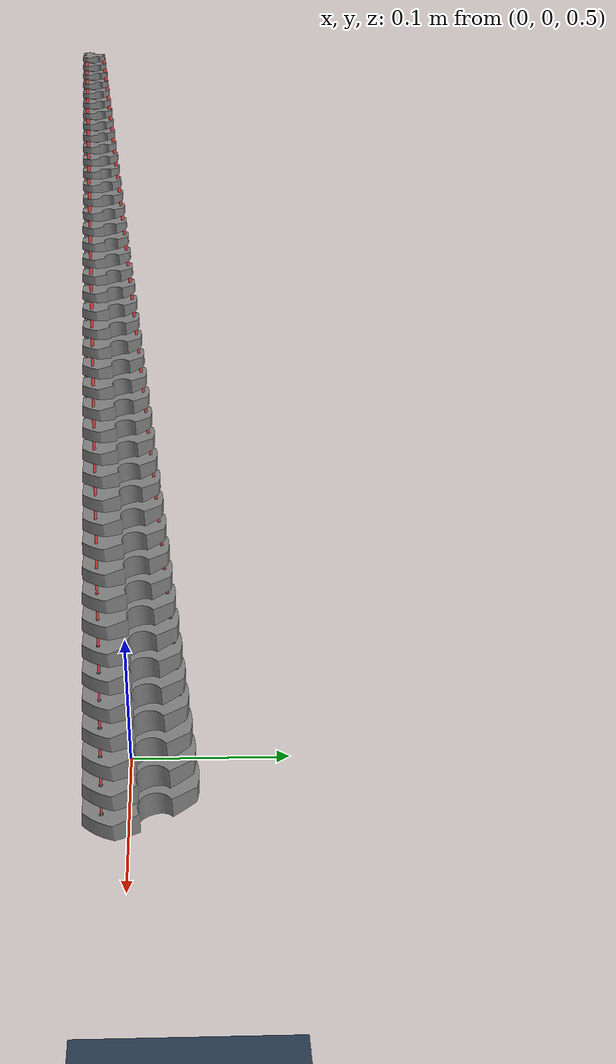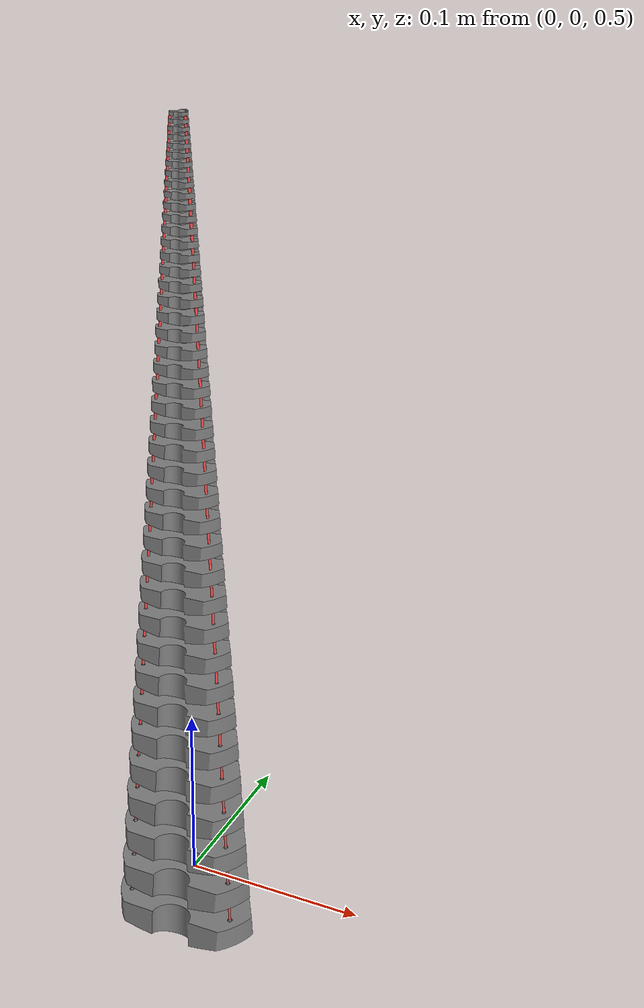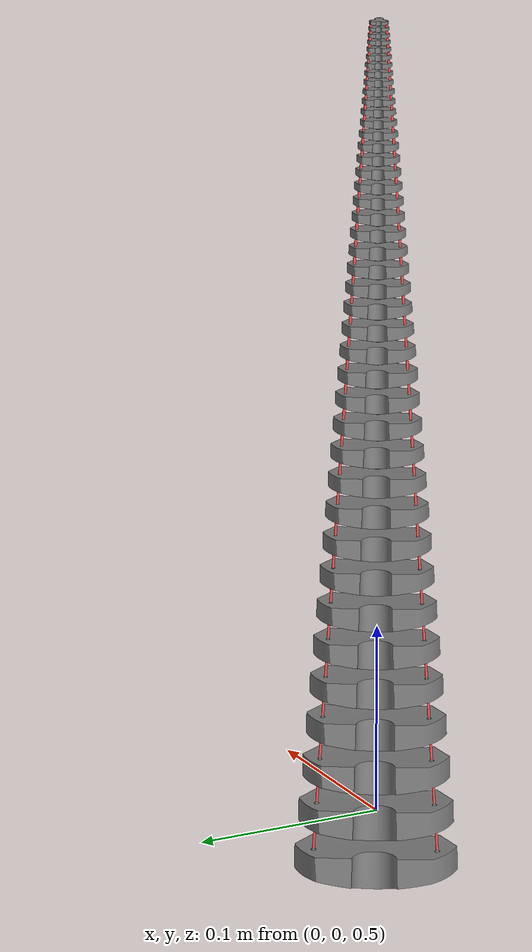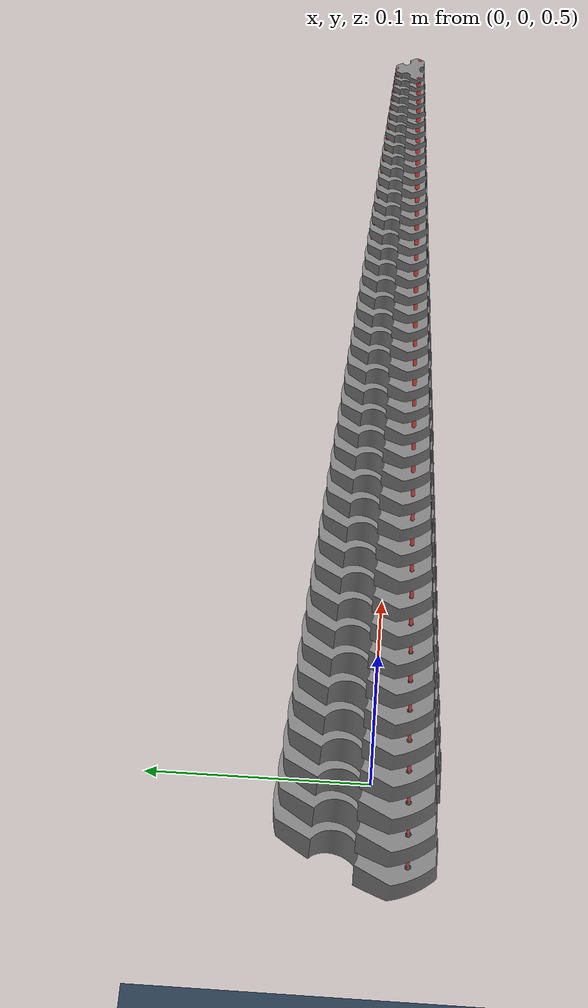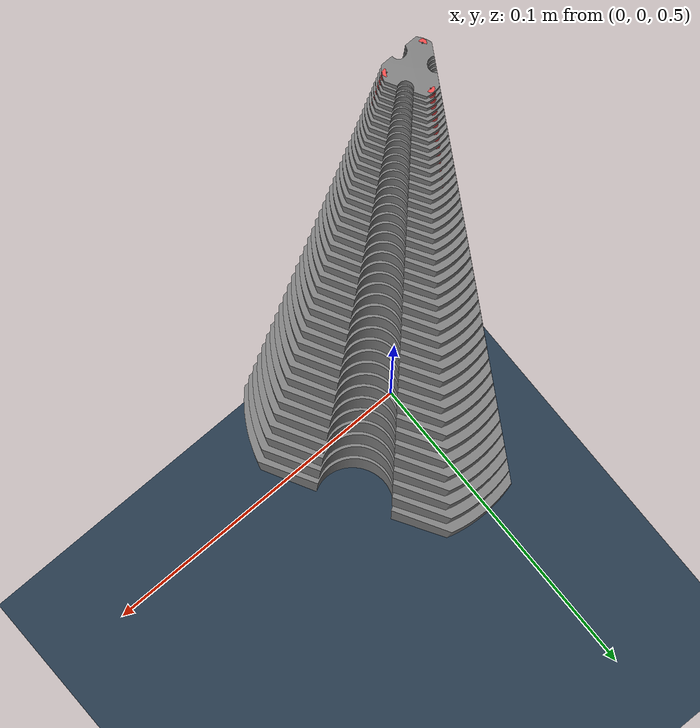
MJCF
<mujoco model="spiral_robot">
  <compiler angle="radian"/>
  <option gravity="0 0 0"/>
  <asset>
    <mesh name="baselink_1" file="baselink.stl" scale="0.001000000 0.001000000 0.001000000"/>
    <mesh name="baselink_2" file="baselink.stl" scale="0.000949007 0.000949007 0.000949007"/>
    <mesh name="baselink_3" file="baselink.stl" scale="0.000900615 0.000900615 0.000900615"/>
    <mesh name="baselink_4" file="baselink.stl" scale="0.000854690 0.000854690 0.000854690"/>
    <mesh name="baselink_5" file="baselink.stl" scale="0.000811107 0.000811107 0.000811107"/>
    <mesh name="baselink_6" file="baselink.stl" scale="0.000769746 0.000769746 0.000769746"/>
    <mesh name="baselink_7" file="baselink.stl" scale="0.000730494 0.000730494 0.000730494"/>
    <mesh name="baselink_8" file="baselink.stl" scale="0.000693244 0.000693244 0.000693244"/>
    <mesh name="baselink_9" file="baselink.stl" scale="0.000657894 0.000657894 0.000657894"/>
    <mesh name="baselink_10" file="baselink.stl" scale="0.000624346 0.000624346 0.000624346"/>
    <mesh name="baselink_11" file="baselink.stl" scale="0.000592509 0.000592509 0.000592509"/>
    <mesh name="baselink_12" file="baselink.stl" scale="0.000562295 0.000562295 0.000562295"/>
    <mesh name="baselink_13" file="baselink.stl" scale="0.000533622 0.000533622 0.000533622"/>
    <mesh name="baselink_14" file="baselink.stl" scale="0.000506411 0.000506411 0.000506411"/>
    <mesh name="baselink_15" file="baselink.stl" scale="0.000480588 0.000480588 0.000480588"/>
    <mesh name="baselink_16" file="baselink.stl" scale="0.000456081 0.000456081 0.000456081"/>
    <mesh name="baselink_17" file="baselink.stl" scale="0.000432825 0.000432825 0.000432825"/>
    <mesh name="baselink_18" file="baselink.stl" scale="0.000410754 0.000410754 0.000410754"/>
    <mesh name="baselink_19" file="baselink.stl" scale="0.000389808 0.000389808 0.000389808"/>
    <mesh name="baselink_20" file="baselink.stl" scale="0.000369931 0.000369931 0.000369931"/>
    <mesh name="baselink_21" file="baselink.stl" scale="0.000351067 0.000351067 0.000351067"/>
    <mesh name="baselink_22" file="baselink.stl" scale="0.000333165 0.000333165 0.000333165"/>
    <mesh name="baselink_23" file="baselink.stl" scale="0.000316176 0.000316176 0.000316176"/>
    <mesh name="baselink_24" file="baselink.stl" scale="0.000300053 0.000300053 0.000300053"/>
    <mesh name="baselink_25" file="baselink.stl" scale="0.000284753 0.000284753 0.000284753"/>
    <mesh name="baselink_26" file="baselink.stl" scale="0.000270232 0.000270232 0.000270232"/>
    <mesh name="baselink_27" file="baselink.stl" scale="0.000256452 0.000256452 0.000256452"/>
    <mesh name="baselink_28" file="baselink.stl" scale="0.000243375 0.000243375 0.000243375"/>
    <mesh name="baselink_29" file="baselink.stl" scale="0.000230965 0.000230965 0.000230965"/>
    <mesh name="baselink_30" file="baselink.stl" scale="0.000219187 0.000219187 0.000219187"/>
    <mesh name="baselink_31" file="baselink.stl" scale="0.000208010 0.000208010 0.000208010"/>
    <mesh name="baselink_32" file="baselink.stl" scale="0.000197403 0.000197403 0.000197403"/>
    <mesh name="baselink_33" file="baselink.stl" scale="0.000187337 0.000187337 0.000187337"/>
    <mesh name="baselink_34" file="baselink.stl" scale="0.000177784 0.000177784 0.000177784"/>
    <mesh name="baselink_35" file="baselink.stl" scale="0.000168718 0.000168718 0.000168718"/>
    <mesh name="baselink_36" file="baselink.stl" scale="0.000160115 0.000160115 0.000160115"/>
    <mesh name="baselink_37" file="baselink.stl" scale="0.000151950 0.000151950 0.000151950"/>
    <mesh name="baselink_38" file="baselink.stl" scale="0.000144202 0.000144202 0.000144202"/>
    <mesh name="baselink_39" file="baselink.stl" scale="0.000136849 0.000136849 0.000136849"/>
    <mesh name="baselink_40" file="baselink.stl" scale="0.000129870 0.000129870 0.000129870"/>
    <mesh name="baselink_41" file="baselink.stl" scale="0.000123248 0.000123248 0.000123248"/>
    <mesh name="baselink_42" file="baselink.stl" scale="0.000116963 0.000116963 0.000116963"/>
    <texture name="texplane" type="2d" builtin="checker" rgb1=".2 .3 .4" rgb2=".1 0.15 0.2" width="512" height="512" mark="cross" markrgb=".8 .8 .8"/>
    <material name="matplane" reflectance="0.3" texture="texplane" texrepeat="1 1" texuniform="true"/>
  </asset>
  <worldbody>
    <geom name="ground" type="plane" size="10 10 1" pos="0 0 0" quat="1 0 0 0" material="matplane" condim="1"/>
    <light pos="1 0.5 0.7" dir="-1 -0.5 -1" directional="true" castshadow="false" diffuse="1 1 1" specular="0.3 0.3 0.3"/>
    <body name="link1" pos="0 0 0.458096764">
      <geom type="mesh" mesh="baselink_1"/>
      <site name="s1_1" pos="0.000000000 0.037646857 0.012545197" size="0.001000 0.001000 0.001000"/>
      <site name="s1_2" pos="0.000000000 0.036492190 0.027187138" size="0.001000 0.001000 0.001000"/>
      <site name="s1_3" pos="-0.032603134 -0.018823428 0.012545197" size="0.001000 0.001000 0.001000"/>
      <site name="s1_4" pos="-0.031603163 -0.018246095 0.027187138" size="0.001000 0.001000 0.001000"/>
      <site name="s1_5" pos="0.032603134 -0.018823428 0.012545197" size="0.001000 0.001000 0.001000"/>
      <site name="s1_6" pos="0.031603163 -0.018246095 0.027187138" size="0.001000 0.001000 0.001000"/>
      <body name="link2" pos="0 0 0.026276293">
        <joint type="ball" stiffness="5.000000" damping="2.000000"/>
        <geom type="mesh" mesh="baselink_2"/>
        <site name="s2_1" pos="0.000000000 0.035727136 0.011905482" size="0.000949 0.000949 0.000949"/>
        <site name="s2_2" pos="0.000000000 0.034631350 0.025800788" size="0.000949 0.000949 0.000949"/>
        <site name="s2_3" pos="-0.030940608 -0.017863568 0.011905482" size="0.000949 0.000949 0.000949"/>
        <site name="s2_4" pos="-0.029991628 -0.017315675 0.025800788" size="0.000949 0.000949 0.000949"/>
        <site name="s2_5" pos="0.030940608 -0.017863568 0.011905482" size="0.000949 0.000949 0.000949"/>
        <site name="s2_6" pos="0.029991628 -0.017315675 0.025800788" size="0.000949 0.000949 0.000949"/>
      <body name="link3" pos="0 0 0.024936390">
        <joint type="ball" stiffness="4.503073" damping="1.898014"/>
        <geom type="mesh" mesh="baselink_3"/>
        <site name="s3_1" pos="0.000000000 0.033905308 0.011298387" size="0.000901 0.000901 0.000901"/>
        <site name="s3_2" pos="0.000000000 0.032865399 0.024485133" size="0.000901 0.000901 0.000901"/>
        <site name="s3_3" pos="-0.029362858 -0.016952654 0.011298387" size="0.000901 0.000901 0.000901"/>
        <site name="s3_4" pos="-0.028462270 -0.016432699 0.024485133" size="0.000901 0.000901 0.000901"/>
        <site name="s3_5" pos="0.029362858 -0.016952654 0.011298387" size="0.000901 0.000901 0.000901"/>
        <site name="s3_6" pos="0.028462270 -0.016432699 0.024485133" size="0.000901 0.000901 0.000901"/>
      <body name="link4" pos="0 0 0.023664813">
        <joint type="ball" stiffness="4.055533" damping="1.801229"/>
        <geom type="mesh" mesh="baselink_4"/>
        <site name="s4_1" pos="0.000000000 0.032176381 0.010722251" size="0.000855 0.000855 0.000855"/>
        <site name="s4_2" pos="0.000000000 0.031189499 0.023236567" size="0.000855 0.000855 0.000855"/>
        <site name="s4_3" pos="-0.027865563 -0.016088190 0.010722251" size="0.000855 0.000855 0.000855"/>
        <site name="s4_4" pos="-0.027010898 -0.015594749 0.023236567" size="0.000855 0.000855 0.000855"/>
        <site name="s4_5" pos="0.027865563 -0.016088190 0.010722251" size="0.000855 0.000855 0.000855"/>
        <site name="s4_6" pos="0.027010898 -0.015594749 0.023236567" size="0.000855 0.000855 0.000855"/>
      <body name="link5" pos="0 0 0.022458077">
        <joint type="ball" stiffness="3.652472" damping="1.709379"/>
        <geom type="mesh" mesh="baselink_5"/>
        <site name="s5_1" pos="0.000000000 0.030535616 0.010175493" size="0.000811 0.000811 0.000811"/>
        <site name="s5_2" pos="0.000000000 0.029599058 0.022051668" size="0.000811 0.000811 0.000811"/>
        <site name="s5_3" pos="-0.026444619 -0.015267808 0.010175493" size="0.000811 0.000811 0.000811"/>
        <site name="s5_4" pos="-0.025633536 -0.014799529 0.022051668" size="0.000811 0.000811 0.000811"/>
        <site name="s5_5" pos="0.026444619 -0.015267808 0.010175493" size="0.000811 0.000811 0.000811"/>
        <site name="s5_6" pos="0.025633536 -0.014799529 0.022051668" size="0.000811 0.000811 0.000811"/>
      <body name="link6" pos="0 0 0.021312876">
        <joint type="ball" stiffness="3.289470" damping="1.622213"/>
        <geom type="mesh" mesh="baselink_6"/>
        <site name="s6_1" pos="0.000000000 0.028978518 0.009656615" size="0.000770 0.000770 0.000770"/>
        <site name="s6_2" pos="0.000000000 0.028089718 0.020927191" size="0.000770 0.000770 0.000770"/>
        <site name="s6_3" pos="-0.025096133 -0.014489259 0.009656615" size="0.000770 0.000770 0.000770"/>
        <site name="s6_4" pos="-0.024326409 -0.014044859 0.020927191" size="0.000770 0.000770 0.000770"/>
        <site name="s6_5" pos="0.025096133 -0.014489259 0.009656615" size="0.000770 0.000770 0.000770"/>
        <site name="s6_6" pos="0.024326409 -0.014044859 0.020927191" size="0.000770 0.000770 0.000770"/>
      <body name="link7" pos="0 0 0.020226072">
        <joint type="ball" stiffness="2.962545" damping="1.539492"/>
        <geom type="mesh" mesh="baselink_7"/>
        <site name="s7_1" pos="0.000000000 0.027500821 0.009164197" size="0.000730 0.000730 0.000730"/>
        <site name="s7_2" pos="0.000000000 0.026657343 0.019860054" size="0.000730 0.000730 0.000730"/>
        <site name="s7_3" pos="-0.023816410 -0.013750410 0.009164197" size="0.000730 0.000730 0.000730"/>
        <site name="s7_4" pos="-0.023085937 -0.013328672 0.019860054" size="0.000730 0.000730 0.000730"/>
        <site name="s7_5" pos="0.023816410 -0.013750410 0.009164197" size="0.000730 0.000730 0.000730"/>
        <site name="s7_6" pos="0.023085937 -0.013328672 0.019860054" size="0.000730 0.000730 0.000730"/>
      <body name="link8" pos="0 0 0.019194687">
        <joint type="ball" stiffness="2.668111" damping="1.460989"/>
        <geom type="mesh" mesh="baselink_8"/>
        <site name="s8_1" pos="0.000000000 0.026098476 0.008696889" size="0.000693 0.000693 0.000693"/>
        <site name="s8_2" pos="0.000000000 0.025298010 0.018847334" size="0.000693 0.000693 0.000693"/>
        <site name="s8_3" pos="-0.022601943 -0.013049238 0.008696889" size="0.000693 0.000693 0.000693"/>
        <site name="s8_4" pos="-0.021908719 -0.012649005 0.018847334" size="0.000693 0.000693 0.000693"/>
        <site name="s8_5" pos="0.022601943 -0.013049238 0.008696889" size="0.000693 0.000693 0.000693"/>
        <site name="s8_6" pos="0.021908719 -0.012649005 0.018847334" size="0.000693 0.000693 0.000693"/>
      <body name="link9" pos="0 0 0.018215896">
        <joint type="ball" stiffness="2.402940" damping="1.386489"/>
        <geom type="mesh" mesh="baselink_9"/>
        <site name="s9_1" pos="0.000000000 0.024767641 0.008253410" size="0.000658 0.000658 0.000658"/>
        <site name="s9_2" pos="0.000000000 0.024007992 0.017886255" size="0.000658 0.000658 0.000658"/>
        <site name="s9_3" pos="-0.021449406 -0.012383820 0.008253410" size="0.000658 0.000658 0.000658"/>
        <site name="s9_4" pos="-0.020791531 -0.012003996 0.017886255" size="0.000658 0.000658 0.000658"/>
        <site name="s9_5" pos="0.021449406 -0.012383820 0.008253410" size="0.000658 0.000658 0.000658"/>
        <site name="s9_6" pos="0.020791531 -0.012003996 0.017886255" size="0.000658 0.000658 0.000658"/>
      <body name="link10" pos="0 0 0.017287015">
        <joint type="ball" stiffness="2.164123" damping="1.315788"/>
        <geom type="mesh" mesh="baselink_10"/>
        <site name="s10_1" pos="0.000000000 0.023504668 0.007832545" size="0.000624 0.000624 0.000624"/>
        <site name="s10_2" pos="0.000000000 0.022783757 0.016974184" size="0.000624 0.000624 0.000624"/>
        <site name="s10_3" pos="-0.020355640 -0.011752334 0.007832545" size="0.000624 0.000624 0.000624"/>
        <site name="s10_4" pos="-0.019731312 -0.011391878 0.016974184" size="0.000624 0.000624 0.000624"/>
        <site name="s10_5" pos="0.020355640 -0.011752334 0.007832545" size="0.000624 0.000624 0.000624"/>
        <site name="s10_6" pos="0.019731312 -0.011391878 0.016974184" size="0.000624 0.000624 0.000624"/>
      <body name="link11" pos="0 0 0.016405501">
        <joint type="ball" stiffness="1.949040" damping="1.248692"/>
        <geom type="mesh" mesh="baselink_11"/>
        <site name="s11_1" pos="0.000000000 0.022306099 0.007433141" size="0.000593 0.000593 0.000593"/>
        <site name="s11_2" pos="0.000000000 0.021621948 0.016108622" size="0.000593 0.000593 0.000593"/>
        <site name="s11_3" pos="-0.019317648 -0.011153049 0.007433141" size="0.000593 0.000593 0.000593"/>
        <site name="s11_4" pos="-0.018725157 -0.010810974 0.016108622" size="0.000593 0.000593 0.000593"/>
        <site name="s11_5" pos="0.019317648 -0.011153049 0.007433141" size="0.000593 0.000593 0.000593"/>
        <site name="s11_6" pos="0.018725157 -0.010810974 0.016108622" size="0.000593 0.000593 0.000593"/>
      <body name="link12" pos="0 0 0.015568938">
        <joint type="ball" stiffness="1.755334" damping="1.185018"/>
        <geom type="mesh" mesh="baselink_12"/>
        <site name="s12_1" pos="0.000000000 0.021168647 0.007054104" size="0.000562 0.000562 0.000562"/>
        <site name="s12_2" pos="0.000000000 0.020519384 0.015287197" size="0.000562 0.000562 0.000562"/>
        <site name="s12_3" pos="-0.018332586 -0.010584324 0.007054104" size="0.000562 0.000562 0.000562"/>
        <site name="s12_4" pos="-0.017770308 -0.010259692 0.015287197" size="0.000562 0.000562 0.000562"/>
        <site name="s12_5" pos="0.018332586 -0.010584324 0.007054104" size="0.000562 0.000562 0.000562"/>
        <site name="s12_6" pos="0.017770308 -0.010259692 0.015287197" size="0.000562 0.000562 0.000562"/>
      <body name="link13" pos="0 0 0.014775034">
        <joint type="ball" stiffness="1.580880" damping="1.124590"/>
        <geom type="mesh" mesh="baselink_13"/>
        <site name="s13_1" pos="0.000000000 0.020089198 0.006694395" size="0.000534 0.000534 0.000534"/>
        <site name="s13_2" pos="0.000000000 0.019473042 0.014507660" size="0.000534 0.000534 0.000534"/>
        <site name="s13_3" pos="-0.017397756 -0.010044599 0.006694395" size="0.000534 0.000534 0.000534"/>
        <site name="s13_4" pos="-0.016864149 -0.009736521 0.014507660" size="0.000534 0.000534 0.000534"/>
        <site name="s13_5" pos="0.017397756 -0.010044599 0.006694395" size="0.000534 0.000534 0.000534"/>
        <site name="s13_6" pos="0.016864149 -0.009736521 0.014507660" size="0.000534 0.000534 0.000534"/>
      <body name="link14" pos="0 0 0.014021613">
        <joint type="ball" stiffness="1.423763" damping="1.067244"/>
        <geom type="mesh" mesh="baselink_14"/>
        <site name="s14_1" pos="0.000000000 0.019064793 0.006353029" size="0.000506 0.000506 0.000506"/>
        <site name="s14_2" pos="0.000000000 0.018480057 0.013767873" size="0.000506 0.000506 0.000506"/>
        <site name="s14_3" pos="-0.016510595 -0.009532396 0.006353029" size="0.000506 0.000506 0.000506"/>
        <site name="s14_4" pos="-0.016004198 -0.009240028 0.013767873" size="0.000506 0.000506 0.000506"/>
        <site name="s14_5" pos="0.016510595 -0.009532396 0.006353029" size="0.000506 0.000506 0.000506"/>
        <site name="s14_6" pos="0.016004198 -0.009240028 0.013767873" size="0.000506 0.000506 0.000506"/>
      <body name="link15" pos="0 0 0.013306611">
        <joint type="ball" stiffness="1.282262" damping="1.012823"/>
        <geom type="mesh" mesh="baselink_15"/>
        <site name="s15_1" pos="0.000000000 0.018092625 0.006029070" size="0.000481 0.000481 0.000481"/>
        <site name="s15_2" pos="0.000000000 0.017537706 0.013065810" size="0.000481 0.000481 0.000481"/>
        <site name="s15_3" pos="-0.015668673 -0.009046312 0.006029070" size="0.000481 0.000481 0.000481"/>
        <site name="s15_4" pos="-0.015188099 -0.008768853 0.013065810" size="0.000481 0.000481 0.000481"/>
        <site name="s15_5" pos="0.015668673 -0.009046312 0.006029070" size="0.000481 0.000481 0.000481"/>
        <site name="s15_6" pos="0.015188099 -0.008768853 0.013065810" size="0.000481 0.000481 0.000481"/>
      <body name="link16" pos="0 0 0.012628069">
        <joint type="ball" stiffness="1.154824" damping="0.961176"/>
        <geom type="mesh" mesh="baselink_16"/>
        <site name="s16_1" pos="0.000000000 0.017170031 0.005721631" size="0.000456 0.000456 0.000456"/>
        <site name="s16_2" pos="0.000000000 0.016643409 0.012399547" size="0.000456 0.000456 0.000456"/>
        <site name="s16_3" pos="-0.014869683 -0.008585015 0.005721631" size="0.000456 0.000456 0.000456"/>
        <site name="s16_4" pos="-0.014413615 -0.008321704 0.012399547" size="0.000456 0.000456 0.000456"/>
        <site name="s16_5" pos="0.014869683 -0.008585015 0.005721631" size="0.000456 0.000456 0.000456"/>
        <site name="s16_6" pos="0.014413615 -0.008321704 0.012399547" size="0.000456 0.000456 0.000456"/>
      <body name="link17" pos="0 0 0.011984128">
        <joint type="ball" stiffness="1.040051" damping="0.912163"/>
        <geom type="mesh" mesh="baselink_17"/>
        <site name="s17_1" pos="0.000000000 0.016294482 0.005429869" size="0.000433 0.000433 0.000433"/>
        <site name="s17_2" pos="0.000000000 0.015794714 0.011767259" size="0.000433 0.000433 0.000433"/>
        <site name="s17_3" pos="-0.014111435 -0.008147241 0.005429869" size="0.000433 0.000433 0.000433"/>
        <site name="s17_4" pos="-0.013678624 -0.007897357 0.011767259" size="0.000433 0.000433 0.000433"/>
        <site name="s17_5" pos="0.014111435 -0.008147241 0.005429869" size="0.000433 0.000433 0.000433"/>
        <site name="s17_6" pos="0.013678624 -0.007897357 0.011767259" size="0.000433 0.000433 0.000433"/>
      <body name="link18" pos="0 0 0.011373024">
        <joint type="ball" stiffness="0.936685" damping="0.865649"/>
        <geom type="mesh" mesh="baselink_18"/>
        <site name="s18_1" pos="0.000000000 0.015463580 0.005152984" size="0.000411 0.000411 0.000411"/>
        <site name="s18_2" pos="0.000000000 0.014989297 0.011167213" size="0.000411 0.000411 0.000411"/>
        <site name="s18_3" pos="-0.013391853 -0.007731790 0.005152984" size="0.000411 0.000411 0.000411"/>
        <site name="s18_4" pos="-0.012981112 -0.007494648 0.011167213" size="0.000411 0.000411 0.000411"/>
        <site name="s18_5" pos="0.013391853 -0.007731790 0.005152984" size="0.000411 0.000411 0.000411"/>
        <site name="s18_6" pos="0.012981112 -0.007494648 0.011167213" size="0.000411 0.000411 0.000411"/>
      <body name="link19" pos="0 0 0.010793081">
        <joint type="ball" stiffness="0.843592" damping="0.821507"/>
        <geom type="mesh" mesh="baselink_19"/>
        <site name="s19_1" pos="0.000000000 0.014675048 0.004890219" size="0.000390 0.000390 0.000390"/>
        <site name="s19_2" pos="0.000000000 0.014224950 0.010597766" size="0.000390 0.000390 0.000390"/>
        <site name="s19_3" pos="-0.012708965 -0.007337524 0.004890219" size="0.000390 0.000390 0.000390"/>
        <site name="s19_4" pos="-0.012319168 -0.007112475 0.010597766" size="0.000390 0.000390 0.000390"/>
        <site name="s19_5" pos="0.012708965 -0.007337524 0.004890219" size="0.000390 0.000390 0.000390"/>
        <site name="s19_6" pos="0.012319168 -0.007112475 0.010597766" size="0.000390 0.000390 0.000390"/>
      <body name="link20" pos="0 0 0.010242711">
        <joint type="ball" stiffness="0.759752" damping="0.779616"/>
        <geom type="mesh" mesh="baselink_20"/>
        <site name="s20_1" pos="0.000000000 0.013926726 0.004640853" size="0.000370 0.000370 0.000370"/>
        <site name="s20_2" pos="0.000000000 0.013499579 0.010057355" size="0.000370 0.000370 0.000370"/>
        <site name="s20_3" pos="-0.012060898 -0.006963363 0.004640853" size="0.000370 0.000370 0.000370"/>
        <site name="s20_4" pos="-0.011690979 -0.006749790 0.010057355" size="0.000370 0.000370 0.000370"/>
        <site name="s20_5" pos="0.012060898 -0.006963363 0.004640853" size="0.000370 0.000370 0.000370"/>
        <site name="s20_6" pos="0.011690979 -0.006749790 0.010057355" size="0.000370 0.000370 0.000370"/>
      <body name="link21" pos="0 0 0.009720406">
        <joint type="ball" stiffness="0.684243" damping="0.739861"/>
        <geom type="mesh" mesh="baselink_21"/>
        <site name="s21_1" pos="0.000000000 0.013216563 0.004404203" size="0.000351 0.000351 0.000351"/>
        <site name="s21_2" pos="0.000000000 0.012811197 0.009544502" size="0.000351 0.000351 0.000351"/>
        <site name="s21_3" pos="-0.011445879 -0.006608281 0.004404203" size="0.000351 0.000351 0.000351"/>
        <site name="s21_4" pos="-0.011094822 -0.006405599 0.009544502" size="0.000351 0.000351 0.000351"/>
        <site name="s21_5" pos="0.011445879 -0.006608281 0.004404203" size="0.000351 0.000351 0.000351"/>
        <site name="s21_6" pos="0.011094822 -0.006405599 0.009544502" size="0.000351 0.000351 0.000351"/>
      <body name="link22" pos="0 0 0.009224735">
        <joint type="ball" stiffness="0.616240" damping="0.702134"/>
        <geom type="mesh" mesh="baselink_22"/>
        <site name="s22_1" pos="0.000000000 0.012542613 0.004179620" size="0.000333 0.000333 0.000333"/>
        <site name="s22_2" pos="0.000000000 0.012157918 0.009057801" size="0.000333 0.000333 0.000333"/>
        <site name="s22_3" pos="-0.010862221 -0.006271306 0.004179620" size="0.000333 0.000333 0.000333"/>
        <site name="s22_4" pos="-0.010529066 -0.006078959 0.009057801" size="0.000333 0.000333 0.000333"/>
        <site name="s22_5" pos="0.010862221 -0.006271306 0.004179620" size="0.000333 0.000333 0.000333"/>
        <site name="s22_6" pos="0.010529066 -0.006078959 0.009057801" size="0.000333 0.000333 0.000333"/>
      <body name="link23" pos="0 0 0.008754340">
        <joint type="ball" stiffness="0.554994" damping="0.666330"/>
        <geom type="mesh" mesh="baselink_23"/>
        <site name="s23_1" pos="0.000000000 0.011903029 0.003966489" size="0.000316 0.000316 0.000316"/>
        <site name="s23_2" pos="0.000000000 0.011537951 0.008595918" size="0.000316 0.000316 0.000316"/>
        <site name="s23_3" pos="-0.010308326 -0.005951515 0.003966489" size="0.000316 0.000316 0.000316"/>
        <site name="s23_4" pos="-0.009992159 -0.005768976 0.008595918" size="0.000316 0.000316 0.000316"/>
        <site name="s23_5" pos="0.010308326 -0.005951515 0.003966489" size="0.000316 0.000316 0.000316"/>
        <site name="s23_6" pos="0.009992159 -0.005768976 0.008595918" size="0.000316 0.000316 0.000316"/>
      <body name="link24" pos="0 0 0.008307931">
        <joint type="ball" stiffness="0.499836" damping="0.632352"/>
        <geom type="mesh" mesh="baselink_24"/>
        <site name="s24_1" pos="0.000000000 0.011296060 0.003764227" size="0.000300 0.000300 0.000300"/>
        <site name="s24_2" pos="0.000000000 0.010949598 0.008157588" size="0.000300 0.000300 0.000300"/>
        <site name="s24_3" pos="-0.009782675 -0.005648030 0.003764227" size="0.000300 0.000300 0.000300"/>
        <site name="s24_4" pos="-0.009482630 -0.005474799 0.008157588" size="0.000300 0.000300 0.000300"/>
        <site name="s24_5" pos="0.009782675 -0.005648030 0.003764227" size="0.000300 0.000300 0.000300"/>
        <site name="s24_6" pos="0.009482630 -0.005474799 0.008157588" size="0.000300 0.000300 0.000300"/>
      <body name="link25" pos="0 0 0.007884286">
        <joint type="ball" stiffness="0.450160" damping="0.600106"/>
        <geom type="mesh" mesh="baselink_25"/>
        <site name="s25_1" pos="0.000000000 0.010720042 0.003572278" size="0.000285 0.000285 0.000285"/>
        <site name="s25_2" pos="0.000000000 0.010391247 0.007741609" size="0.000285 0.000285 0.000285"/>
        <site name="s25_3" pos="-0.009283829 -0.005360021 0.003572278" size="0.000285 0.000285 0.000285"/>
        <site name="s25_4" pos="-0.008999084 -0.005195624 0.007741609" size="0.000285 0.000285 0.000285"/>
        <site name="s25_5" pos="0.009283829 -0.005360021 0.003572278" size="0.000285 0.000285 0.000285"/>
        <site name="s25_6" pos="0.008999084 -0.005195624 0.007741609" size="0.000285 0.000285 0.000285"/>
      <body name="link26" pos="0 0 0.007482244">
        <joint type="ball" stiffness="0.405420" damping="0.569505"/>
        <geom type="mesh" mesh="baselink_26"/>
        <site name="s26_1" pos="0.000000000 0.010173396 0.003390117" size="0.000270 0.000270 0.000270"/>
        <site name="s26_2" pos="0.000000000 0.009861368 0.007346843" size="0.000270 0.000270 0.000270"/>
        <site name="s26_3" pos="-0.008810420 -0.005086698 0.003390117" size="0.000270 0.000270 0.000270"/>
        <site name="s26_4" pos="-0.008540195 -0.004930684 0.007346843" size="0.000270 0.000270 0.000270"/>
        <site name="s26_5" pos="0.008810420 -0.005086698 0.003390117" size="0.000270 0.000270 0.000270"/>
        <site name="s26_6" pos="0.008540195 -0.004930684 0.007346843" size="0.000270 0.000270 0.000270"/>
      <body name="link27" pos="0 0 0.007100703">
        <joint type="ball" stiffness="0.365127" damping="0.540465"/>
        <geom type="mesh" mesh="baselink_27"/>
        <site name="s27_1" pos="0.000000000 0.009654626 0.003217246" size="0.000256 0.000256 0.000256"/>
        <site name="s27_2" pos="0.000000000 0.009358509 0.006972206" size="0.000256 0.000256 0.000256"/>
        <site name="s27_3" pos="-0.008361151 -0.004827313 0.003217246" size="0.000256 0.000256 0.000256"/>
        <site name="s27_4" pos="-0.008104707 -0.004679255 0.006972206" size="0.000256 0.000256 0.000256"/>
        <site name="s27_5" pos="0.008361151 -0.004827313 0.003217246" size="0.000256 0.000256 0.000256"/>
        <site name="s27_6" pos="0.008104707 -0.004679255 0.006972206" size="0.000256 0.000256 0.000256"/>
      <body name="link28" pos="0 0 0.006738618">
        <joint type="ball" stiffness="0.328839" damping="0.512905"/>
        <geom type="mesh" mesh="baselink_28"/>
        <site name="s28_1" pos="0.000000000 0.009162309 0.003053189" size="0.000243 0.000243 0.000243"/>
        <site name="s28_2" pos="0.000000000 0.008881292 0.006616674" size="0.000243 0.000243 0.000243"/>
        <site name="s28_3" pos="-0.007934793 -0.004581155 0.003053189" size="0.000243 0.000243 0.000243"/>
        <site name="s28_4" pos="-0.007691425 -0.004440646 0.006616674" size="0.000243 0.000243 0.000243"/>
        <site name="s28_5" pos="0.007934793 -0.004581155 0.003053189" size="0.000243 0.000243 0.000243"/>
        <site name="s28_6" pos="0.007691425 -0.004440646 0.006616674" size="0.000243 0.000243 0.000243"/>
      <body name="link29" pos="0 0 0.006394997">
        <joint type="ball" stiffness="0.296157" damping="0.486750"/>
        <geom type="mesh" mesh="baselink_29"/>
        <site name="s29_1" pos="0.000000000 0.008695097 0.002897498" size="0.000231 0.000231 0.000231"/>
        <site name="s29_2" pos="0.000000000 0.008428410 0.006279271" size="0.000231 0.000231 0.000231"/>
        <site name="s29_3" pos="-0.007530175 -0.004347549 0.002897498" size="0.000231 0.000231 0.000231"/>
        <site name="s29_4" pos="-0.007299217 -0.004214205 0.006279271" size="0.000231 0.000231 0.000231"/>
        <site name="s29_5" pos="0.007530175 -0.004347549 0.002897498" size="0.000231 0.000231 0.000231"/>
        <site name="s29_6" pos="0.007299217 -0.004214205 0.006279271" size="0.000231 0.000231 0.000231"/>
      <body name="link30" pos="0 0 0.006068898">
        <joint type="ball" stiffness="0.266724" damping="0.461930"/>
        <geom type="mesh" mesh="baselink_30"/>
        <site name="s30_1" pos="0.000000000 0.008251709 0.002749747" size="0.000219 0.000219 0.000219"/>
        <site name="s30_2" pos="0.000000000 0.007998621 0.005959073" size="0.000219 0.000219 0.000219"/>
        <site name="s30_3" pos="-0.007146190 -0.004125855 0.002749747" size="0.000219 0.000219 0.000219"/>
        <site name="s30_4" pos="-0.006927009 -0.003999311 0.005959073" size="0.000219 0.000219 0.000219"/>
        <site name="s30_5" pos="0.007146190 -0.004125855 0.002749747" size="0.000219 0.000219 0.000219"/>
        <site name="s30_6" pos="0.006927009 -0.003999311 0.005959073" size="0.000219 0.000219 0.000219"/>
      <body name="link31" pos="0 0 0.005759427">
        <joint type="ball" stiffness="0.240215" damping="0.438374"/>
        <geom type="mesh" mesh="baselink_31"/>
        <site name="s31_1" pos="0.000000000 0.007830931 0.002609529" size="0.000208 0.000208 0.000208"/>
        <site name="s31_2" pos="0.000000000 0.007590749 0.005655203" size="0.000208 0.000208 0.000208"/>
        <site name="s31_3" pos="-0.006781785 -0.003915466 0.002609529" size="0.000208 0.000208 0.000208"/>
        <site name="s31_4" pos="-0.006573781 -0.003795374 0.005655203" size="0.000208 0.000208 0.000208"/>
        <site name="s31_5" pos="0.006781785 -0.003915466 0.002609529" size="0.000208 0.000208 0.000208"/>
        <site name="s31_6" pos="0.006573781 -0.003795374 0.005655203" size="0.000208 0.000208 0.000208"/>
      <body name="link32" pos="0 0 0.005465738">
        <joint type="ball" stiffness="0.216341" damping="0.416020"/>
        <geom type="mesh" mesh="baselink_32"/>
        <site name="s32_1" pos="0.000000000 0.007431610 0.002476462" size="0.000197 0.000197 0.000197"/>
        <site name="s32_2" pos="0.000000000 0.007203675 0.005366828" size="0.000197 0.000197 0.000197"/>
        <site name="s32_3" pos="-0.006435963 -0.003715805 0.002476462" size="0.000197 0.000197 0.000197"/>
        <site name="s32_4" pos="-0.006238566 -0.003601838 0.005366828" size="0.000197 0.000197 0.000197"/>
        <site name="s32_5" pos="0.006435963 -0.003715805 0.002476462" size="0.000197 0.000197 0.000197"/>
        <site name="s32_6" pos="0.006238566 -0.003601838 0.005366828" size="0.000197 0.000197 0.000197"/>
      <body name="link33" pos="0 0 0.005187024">
        <joint type="ball" stiffness="0.194840" damping="0.394806"/>
        <geom type="mesh" mesh="baselink_33"/>
        <site name="s33_1" pos="0.000000000 0.007052651 0.002350180" size="0.000187 0.000187 0.000187"/>
        <site name="s33_2" pos="0.000000000 0.006836339 0.005093158" size="0.000187 0.000187 0.000187"/>
        <site name="s33_3" pos="-0.006107775 -0.003526326 0.002350180" size="0.000187 0.000187 0.000187"/>
        <site name="s33_4" pos="-0.005920443 -0.003418170 0.005093158" size="0.000187 0.000187 0.000187"/>
        <site name="s33_5" pos="0.006107775 -0.003526326 0.002350180" size="0.000187 0.000187 0.000187"/>
        <site name="s33_6" pos="0.005920443 -0.003418170 0.005093158" size="0.000187 0.000187 0.000187"/>
      <body name="link34" pos="0 0 0.004922523">
        <joint type="ball" stiffness="0.175476" damping="0.374674"/>
        <geom type="mesh" mesh="baselink_34"/>
        <site name="s34_1" pos="0.000000000 0.006693016 0.002230338" size="0.000178 0.000178 0.000178"/>
        <site name="s34_2" pos="0.000000000 0.006487735 0.004833444" size="0.000178 0.000178 0.000178"/>
        <site name="s34_3" pos="-0.005796322 -0.003346508 0.002230338" size="0.000178 0.000178 0.000178"/>
        <site name="s34_4" pos="-0.005618543 -0.003243867 0.004833444" size="0.000178 0.000178 0.000178"/>
        <site name="s34_5" pos="0.005796322 -0.003346508 0.002230338" size="0.000178 0.000178 0.000178"/>
        <site name="s34_6" pos="0.005618543 -0.003243867 0.004833444" size="0.000178 0.000178 0.000178"/>
      <body name="link35" pos="0 0 0.004671510">
        <joint type="ball" stiffness="0.158036" damping="0.355568"/>
        <geom type="mesh" mesh="baselink_35"/>
        <site name="s35_1" pos="0.000000000 0.006351720 0.002116607" size="0.000169 0.000169 0.000169"/>
        <site name="s35_2" pos="0.000000000 0.006156907 0.004586973" size="0.000169 0.000169 0.000169"/>
        <site name="s35_3" pos="-0.005500751 -0.003175860 0.002116607" size="0.000169 0.000169 0.000169"/>
        <site name="s35_4" pos="-0.005332038 -0.003078453 0.004586973" size="0.000169 0.000169 0.000169"/>
        <site name="s35_5" pos="0.005500751 -0.003175860 0.002116607" size="0.000169 0.000169 0.000169"/>
        <site name="s35_6" pos="0.005332038 -0.003078453 0.004586973" size="0.000169 0.000169 0.000169"/>
      <body name="link36" pos="0 0 0.004433296">
        <joint type="ball" stiffness="0.142330" damping="0.337437"/>
        <geom type="mesh" mesh="baselink_36"/>
        <site name="s36_1" pos="0.000000000 0.006027828 0.002008675" size="0.000160 0.000160 0.000160"/>
        <site name="s36_2" pos="0.000000000 0.005842949 0.004353070" size="0.000160 0.000160 0.000160"/>
        <site name="s36_3" pos="-0.005220252 -0.003013914 0.002008675" size="0.000160 0.000160 0.000160"/>
        <site name="s36_4" pos="-0.005060142 -0.002921474 0.004353070" size="0.000160 0.000160 0.000160"/>
        <site name="s36_5" pos="0.005220252 -0.003013914 0.002008675" size="0.000160 0.000160 0.000160"/>
        <site name="s36_6" pos="0.005060142 -0.002921474 0.004353070" size="0.000160 0.000160 0.000160"/>
      <body name="link37" pos="0 0 0.004207230">
        <joint type="ball" stiffness="0.128184" damping="0.320230"/>
        <geom type="mesh" mesh="baselink_37"/>
        <site name="s37_1" pos="0.000000000 0.005720452 0.001906247" size="0.000152 0.000152 0.000152"/>
        <site name="s37_2" pos="0.000000000 0.005545000 0.004131094" size="0.000152 0.000152 0.000152"/>
        <site name="s37_3" pos="-0.004954057 -0.002860226 0.001906247" size="0.000152 0.000152 0.000152"/>
        <site name="s37_4" pos="-0.004802111 -0.002772500 0.004131094" size="0.000152 0.000152 0.000152"/>
        <site name="s37_5" pos="0.004954057 -0.002860226 0.001906247" size="0.000152 0.000152 0.000152"/>
        <site name="s37_6" pos="0.004802111 -0.002772500 0.004131094" size="0.000152 0.000152 0.000152"/>
      <body name="link38" pos="0 0 0.003992691">
        <joint type="ball" stiffness="0.115445" damping="0.303901"/>
        <geom type="mesh" mesh="baselink_38"/>
        <site name="s38_1" pos="0.000000000 0.005428750 0.001809042" size="0.000144 0.000144 0.000144"/>
        <site name="s38_2" pos="0.000000000 0.005262245 0.003920438" size="0.000144 0.000144 0.000144"/>
        <site name="s38_3" pos="-0.004701435 -0.002714375 0.001809042" size="0.000144 0.000144 0.000144"/>
        <site name="s38_4" pos="-0.004557238 -0.002631122 0.003920438" size="0.000144 0.000144 0.000144"/>
        <site name="s38_5" pos="0.004701435 -0.002714375 0.001809042" size="0.000144 0.000144 0.000144"/>
        <site name="s38_6" pos="0.004557238 -0.002631122 0.003920438" size="0.000144 0.000144 0.000144"/>
      <body name="link39" pos="0 0 0.003789093">
        <joint type="ball" stiffness="0.103971" damping="0.288404"/>
        <geom type="mesh" mesh="baselink_39"/>
        <site name="s39_1" pos="0.000000000 0.005151923 0.001716794" size="0.000137 0.000137 0.000137"/>
        <site name="s39_2" pos="0.000000000 0.004993908 0.003720524" size="0.000137 0.000137 0.000137"/>
        <site name="s39_3" pos="-0.004461696 -0.002575961 0.001716794" size="0.000137 0.000137 0.000137"/>
        <site name="s39_4" pos="-0.004324851 -0.002496954 0.003720524" size="0.000137 0.000137 0.000137"/>
        <site name="s39_5" pos="0.004461696 -0.002575961 0.001716794" size="0.000137 0.000137 0.000137"/>
        <site name="s39_6" pos="0.004324851 -0.002496954 0.003720524" size="0.000137 0.000137 0.000137"/>
      <body name="link40" pos="0 0 0.003595876">
        <joint type="ball" stiffness="0.093638" damping="0.273697"/>
        <geom type="mesh" mesh="baselink_40"/>
        <site name="s40_1" pos="0.000000000 0.004889212 0.001629249" size="0.000130 0.000130 0.000130"/>
        <site name="s40_2" pos="0.000000000 0.004739255 0.003530804" size="0.000130 0.000130 0.000130"/>
        <site name="s40_3" pos="-0.004234181 -0.002444606 0.001629249" size="0.000130 0.000130 0.000130"/>
        <site name="s40_4" pos="-0.004104315 -0.002369627 0.003530804" size="0.000130 0.000130 0.000130"/>
        <site name="s40_5" pos="0.004234181 -0.002444606 0.001629249" size="0.000130 0.000130 0.000130"/>
        <site name="s40_6" pos="0.004104315 -0.002369627 0.003530804" size="0.000130 0.000130 0.000130"/>
      <body name="link41" pos="0 0 0.003412512">
        <joint type="ball" stiffness="0.084332" damping="0.259741"/>
        <geom type="mesh" mesh="baselink_41"/>
        <site name="s41_1" pos="0.000000000 0.004639897 0.001546169" size="0.000123 0.000123 0.000123"/>
        <site name="s41_2" pos="0.000000000 0.004497586 0.003350758" size="0.000123 0.000123 0.000123"/>
        <site name="s41_3" pos="-0.004018268 -0.002319948 0.001546169" size="0.000123 0.000123 0.000123"/>
        <site name="s41_4" pos="-0.003895024 -0.002248793 0.003350758" size="0.000123 0.000123 0.000123"/>
        <site name="s41_5" pos="0.004018268 -0.002319948 0.001546169" size="0.000123 0.000123 0.000123"/>
        <site name="s41_6" pos="0.003895024 -0.002248793 0.003350758" size="0.000123 0.000123 0.000123"/>
      <body name="link42" pos="0 0 0.003238498">
        <joint type="ball" stiffness="0.075950" damping="0.246496"/>
        <geom type="mesh" mesh="baselink_42"/>
        <site name="s42_1" pos="0.000000000 0.004403295 0.001467326" size="0.000117 0.000117 0.000117"/>
        <site name="s42_2" pos="0.000000000 0.004268242 0.003179893" size="0.000117 0.000117 0.000117"/>
        <site name="s42_3" pos="-0.003813366 -0.002201648 0.001467326" size="0.000117 0.000117 0.000117"/>
        <site name="s42_4" pos="-0.003696406 -0.002134121 0.003179893" size="0.000117 0.000117 0.000117"/>
        <site name="s42_5" pos="0.003813366 -0.002201648 0.001467326" size="0.000117 0.000117 0.000117"/>
        <site name="s42_6" pos="0.003696406 -0.002134121 0.003179893" size="0.000117 0.000117 0.000117"/>
      </body>
      </body>
      </body>
      </body>
      </body>
      </body>
      </body>
      </body>
      </body>
      </body>
      </body>
      </body>
      </body>
      </body>
      </body>
      </body>
      </body>
      </body>
      </body>
      </body>
      </body>
      </body>
      </body>
      </body>
      </body>
      </body>
      </body>
      </body>
      </body>
      </body>
      </body>
      </body>
      </body>
      </body>
      </body>
      </body>
      </body>
      </body>
      </body>
      </body>
      </body>
    </body>
  </worldbody>
  <tendon>
    <spatial name="tendon1" width="0.0007" frictionloss="0.1" rgba=".95 .3 .3 1" limited="true" range="0.183238706 1.145241910">
      <site site="s1_1"/>
      <site site="s1_2"/>
      <site site="s2_1"/>
      <site site="s2_2"/>
      <site site="s3_1"/>
      <site site="s3_2"/>
      <site site="s4_1"/>
      <site site="s4_2"/>
      <site site="s5_1"/>
      <site site="s5_2"/>
      <site site="s6_1"/>
      <site site="s6_2"/>
      <site site="s7_1"/>
      <site site="s7_2"/>
      <site site="s8_1"/>
      <site site="s8_2"/>
      <site site="s9_1"/>
      <site site="s9_2"/>
      <site site="s10_1"/>
      <site site="s10_2"/>
      <site site="s11_1"/>
      <site site="s11_2"/>
      <site site="s12_1"/>
      <site site="s12_2"/>
      <site site="s13_1"/>
      <site site="s13_2"/>
      <site site="s14_1"/>
      <site site="s14_2"/>
      <site site="s15_1"/>
      <site site="s15_2"/>
      <site site="s16_1"/>
      <site site="s16_2"/>
      <site site="s17_1"/>
      <site site="s17_2"/>
      <site site="s18_1"/>
      <site site="s18_2"/>
      <site site="s19_1"/>
      <site site="s19_2"/>
      <site site="s20_1"/>
      <site site="s20_2"/>
      <site site="s21_1"/>
      <site site="s21_2"/>
      <site site="s22_1"/>
      <site site="s22_2"/>
      <site site="s23_1"/>
      <site site="s23_2"/>
      <site site="s24_1"/>
      <site site="s24_2"/>
      <site site="s25_1"/>
      <site site="s25_2"/>
      <site site="s26_1"/>
      <site site="s26_2"/>
      <site site="s27_1"/>
      <site site="s27_2"/>
      <site site="s28_1"/>
      <site site="s28_2"/>
      <site site="s29_1"/>
      <site site="s29_2"/>
      <site site="s30_1"/>
      <site site="s30_2"/>
      <site site="s31_1"/>
      <site site="s31_2"/>
      <site site="s32_1"/>
      <site site="s32_2"/>
      <site site="s33_1"/>
      <site site="s33_2"/>
      <site site="s34_1"/>
      <site site="s34_2"/>
      <site site="s35_1"/>
      <site site="s35_2"/>
      <site site="s36_1"/>
      <site site="s36_2"/>
      <site site="s37_1"/>
      <site site="s37_2"/>
      <site site="s38_1"/>
      <site site="s38_2"/>
      <site site="s39_1"/>
      <site site="s39_2"/>
      <site site="s40_1"/>
      <site site="s40_2"/>
      <site site="s41_1"/>
      <site site="s41_2"/>
      <site site="s42_1"/>
      <site site="s42_2"/>
    </spatial>
    <spatial name="tendon2" width="0.0007" frictionloss="0.1" rgba=".95 .3 .3 1" limited="true" range="0.183238706 1.145241910">
      <site site="s1_3"/>
      <site site="s1_4"/>
      <site site="s2_3"/>
      <site site="s2_4"/>
      <site site="s3_3"/>
      <site site="s3_4"/>
      <site site="s4_3"/>
      <site site="s4_4"/>
      <site site="s5_3"/>
      <site site="s5_4"/>
      <site site="s6_3"/>
      <site site="s6_4"/>
      <site site="s7_3"/>
      <site site="s7_4"/>
      <site site="s8_3"/>
      <site site="s8_4"/>
      <site site="s9_3"/>
      <site site="s9_4"/>
      <site site="s10_3"/>
      <site site="s10_4"/>
      <site site="s11_3"/>
      <site site="s11_4"/>
      <site site="s12_3"/>
      <site site="s12_4"/>
      <site site="s13_3"/>
      <site site="s13_4"/>
      <site site="s14_3"/>
      <site site="s14_4"/>
      <site site="s15_3"/>
      <site site="s15_4"/>
      <site site="s16_3"/>
      <site site="s16_4"/>
      <site site="s17_3"/>
      <site site="s17_4"/>
      <site site="s18_3"/>
      <site site="s18_4"/>
      <site site="s19_3"/>
      <site site="s19_4"/>
      <site site="s20_3"/>
      <site site="s20_4"/>
      <site site="s21_3"/>
      <site site="s21_4"/>
      <site site="s22_3"/>
      <site site="s22_4"/>
      <site site="s23_3"/>
      <site site="s23_4"/>
      <site site="s24_3"/>
      <site site="s24_4"/>
      <site site="s25_3"/>
      <site site="s25_4"/>
      <site site="s26_3"/>
      <site site="s26_4"/>
      <site site="s27_3"/>
      <site site="s27_4"/>
      <site site="s28_3"/>
      <site site="s28_4"/>
      <site site="s29_3"/>
      <site site="s29_4"/>
      <site site="s30_3"/>
      <site site="s30_4"/>
      <site site="s31_3"/>
      <site site="s31_4"/>
      <site site="s32_3"/>
      <site site="s32_4"/>
      <site site="s33_3"/>
      <site site="s33_4"/>
      <site site="s34_3"/>
      <site site="s34_4"/>
      <site site="s35_3"/>
      <site site="s35_4"/>
      <site site="s36_3"/>
      <site site="s36_4"/>
      <site site="s37_3"/>
      <site site="s37_4"/>
      <site site="s38_3"/>
      <site site="s38_4"/>
      <site site="s39_3"/>
      <site site="s39_4"/>
      <site site="s40_3"/>
      <site site="s40_4"/>
      <site site="s41_3"/>
      <site site="s41_4"/>
      <site site="s42_3"/>
      <site site="s42_4"/>
    </spatial>
    <spatial name="tendon3" width="0.0007" frictionloss="0.1" rgba=".95 .3 .3 1" limited="true" range="0.183238706 1.145241910">
      <site site="s1_5"/>
      <site site="s1_6"/>
      <site site="s2_5"/>
      <site site="s2_6"/>
      <site site="s3_5"/>
      <site site="s3_6"/>
      <site site="s4_5"/>
      <site site="s4_6"/>
      <site site="s5_5"/>
      <site site="s5_6"/>
      <site site="s6_5"/>
      <site site="s6_6"/>
      <site site="s7_5"/>
      <site site="s7_6"/>
      <site site="s8_5"/>
      <site site="s8_6"/>
      <site site="s9_5"/>
      <site site="s9_6"/>
      <site site="s10_5"/>
      <site site="s10_6"/>
      <site site="s11_5"/>
      <site site="s11_6"/>
      <site site="s12_5"/>
      <site site="s12_6"/>
      <site site="s13_5"/>
      <site site="s13_6"/>
      <site site="s14_5"/>
      <site site="s14_6"/>
      <site site="s15_5"/>
      <site site="s15_6"/>
      <site site="s16_5"/>
      <site site="s16_6"/>
      <site site="s17_5"/>
      <site site="s17_6"/>
      <site site="s18_5"/>
      <site site="s18_6"/>
      <site site="s19_5"/>
      <site site="s19_6"/>
      <site site="s20_5"/>
      <site site="s20_6"/>
      <site site="s21_5"/>
      <site site="s21_6"/>
      <site site="s22_5"/>
      <site site="s22_6"/>
      <site site="s23_5"/>
      <site site="s23_6"/>
      <site site="s24_5"/>
      <site site="s24_6"/>
      <site site="s25_5"/>
      <site site="s25_6"/>
      <site site="s26_5"/>
      <site site="s26_6"/>
      <site site="s27_5"/>
      <site site="s27_6"/>
      <site site="s28_5"/>
      <site site="s28_6"/>
      <site site="s29_5"/>
      <site site="s29_6"/>
      <site site="s30_5"/>
      <site site="s30_6"/>
      <site site="s31_5"/>
      <site site="s31_6"/>
      <site site="s32_5"/>
      <site site="s32_6"/>
      <site site="s33_5"/>
      <site site="s33_6"/>
      <site site="s34_5"/>
      <site site="s34_6"/>
      <site site="s35_5"/>
      <site site="s35_6"/>
      <site site="s36_5"/>
      <site site="s36_6"/>
      <site site="s37_5"/>
      <site site="s37_6"/>
      <site site="s38_5"/>
      <site site="s38_6"/>
      <site site="s39_5"/>
      <site site="s39_6"/>
      <site site="s40_5"/>
      <site site="s40_6"/>
      <site site="s41_5"/>
      <site site="s41_6"/>
      <site site="s42_5"/>
      <site site="s42_6"/>
    </spatial>
  </tendon>
  <actuator>
    <muscle name="act1" tendon="tendon1" ctrllimited="true" ctrlrange="0 1" force="5" lengthrange="0.183238706 1.145241910"/>
    <muscle name="act2" tendon="tendon2" ctrllimited="true" ctrlrange="0 1" force="5" lengthrange="0.183238706 1.145241910"/>
    <muscle name="act3" tendon="tendon3" ctrllimited="true" ctrlrange="0 1" force="5" lengthrange="0.183238706 1.145241910"/>
  </actuator>
</mujoco>
